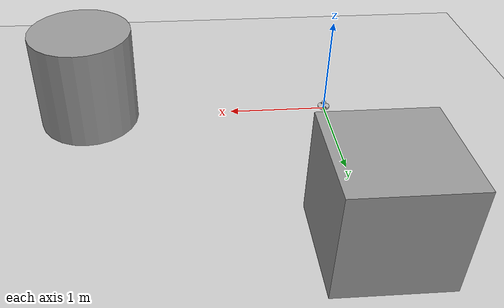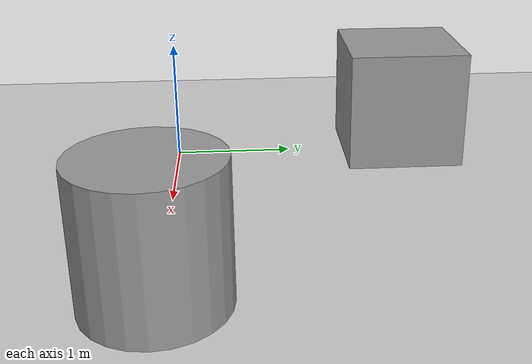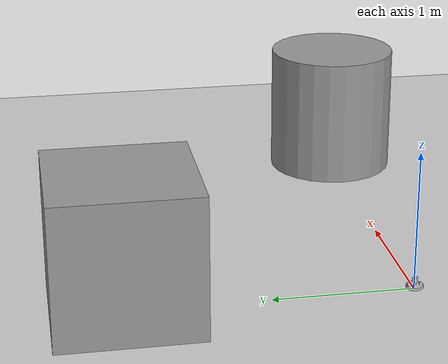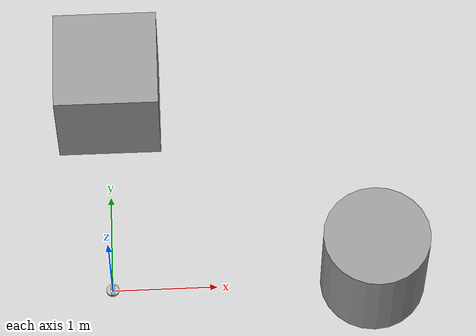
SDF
<gazebo version="1.2">
 <world name="default">
  <physics type="ode">
   <gravity>0.000000 0.000000 -9.800000</gravity>
   <ode>
    <solver><type>quick</type><dt>0.003000</dt><iters>30</iters><sor>1.300000</sor></solver>
    <constraints>
     <cfm>0.000010</cfm>
     <erp>0.800000</erp>
     <contact_max_correcting_vel>100.000000</contact_max_correcting_vel>
     <contact_surface_layer>0.001000</contact_surface_layer>
    </constraints>
   </ode>
   <update_rate>1000.000000</update_rate>
  </physics>
  <model name="ground_plane">
   <static>1</static>
   <link name="link">
    <collision name="collision">
     <geometry>
      <plane><normal>0.000000 0.000000 1.000000</normal><size>100.000000 100.000000</size></plane>
     </geometry>
     <surface><friction><ode><mu>100.000000</mu><mu2>50.000000</mu2></ode></friction></surface>
    </collision>
    <visual name="visual">
     <cast_shadows>0</cast_shadows>
     <geometry>
      <plane><normal>0.000000 0.000000 1.000000</normal><size>100.000000 100.000000</size></plane>
     </geometry>
     <material>
      <script><uri>file://media/materials/scripts/gazebo.material</uri><name>Gazebo/Grey</name></script>
     </material>
    </visual>
    <velocity_decay><linear>0.000000</linear><angular>0.000000</angular></velocity_decay>
   </link>
  </model>
  <light name="sun" type="directional">
   <pose>0.000000 0.000000 10.000000 0.000000 -0.000000 0.000000</pose>
   <diffuse>0.800000 0.800000 0.800000 1.000000</diffuse>
   <specular>0.100000 0.100000 0.100000 1.000000</specular>
   <attenuation>
    <range>1000.000000</range>
    <constant>0.900000</constant>
    <linear>0.100000</linear>
    <quadratic>0.010000</quadratic>
   </attenuation>
   <direction>0.500000 0.000000 -1.000000</direction>
  </light>
  <scene>
   <ambient>0.000000 0.000000 0.000000 1.000000</ambient>
   <background>0.700000 0.700000 0.700000 1.000000</background>
   <shadows>1</shadows>
  </scene>
  <model name="robot_0">
   <pose>0.000000 -0.002347 0.021013 0.000237 -0.000000 0.000000</pose>
   <link name="base_link">
    <inertial>
     <pose>0.000000 0.000000 0.020000 0.000000 -0.000000 0.000000</pose>
     <mass>0.000300</mass>
     <inertia>
      <ixx>0.000300</ixx>
      <ixy>0.000000</ixy>
      <ixz>0.000000</ixz>
      <iyy>0.000300</iyy>
      <iyz>0.000000</iyz>
      <izz>0.000300</izz>
     </inertia>
    </inertial>
    <collision name="base_link_geom">
     <geometry><cylinder><length>0.020000</length><radius>0.061000</radius></cylinder></geometry>
    </collision>
    <collision name="base_link_geom_hokuyo_link">
     <pose>0.000000 0.000000 0.050000 0.000000 -0.000000 0.000000</pose>
     <geometry><cylinder><length>0.030000</length><radius>0.020000</radius></cylinder></geometry>
    </collision>
    <collision name="base_link_geom_imu_link">
     <pose>0.000000 0.000000 0.010000 0.000000 -0.000000 0.000000</pose>
     <geometry><cylinder><length>0.010000</length><radius>0.010000</radius></cylinder></geometry>
    </collision>
    <visual name="base_link_visual">
     <geometry><cylinder><length>0.020000</length><radius>0.061000</radius></cylinder></geometry>
    </visual>
    <visual name="base_link_visual_hokuyo_link">
     <pose>0.000000 0.000000 0.050000 0.000000 -0.000000 0.000000</pose>
     <geometry><cylinder><length>0.030000</length><radius>0.020000</radius></cylinder></geometry>
    </visual>
    <visual name="base_link_visual_imu_link">
     <pose>0.000000 0.000000 0.010000 0.000000 -0.000000 0.000000</pose>
     <geometry><cylinder><length>0.010000</length><radius>0.010000</radius></cylinder></geometry>
    </visual>
    <velocity_decay><linear>0.000000</linear><angular>0.000000</angular></velocity_decay>
    <sensor name="hokuyo_laser" type="ray">
     <update_rate>10.000000</update_rate>
     <ray>
      <scan>
       <horizontal>
        <samples>640</samples>
        <resolution>1.000000</resolution>
        <min_angle>-3.141593</min_angle>
        <max_angle>3.141593</max_angle>
       </horizontal>
       <vertical><samples>1</samples><min_angle>0.000000</min_angle><max_angle>0.000000</max_angle></vertical>
      </scan>
      <range><min>0.050000</min><max>30.100000</max><resolution>0.001000</resolution></range>
     </ray>
     <plugin name="gazebo_ros_hokuyo_laser_controller02" filename="libgazebo_ros_laser.so">
      <hokuyoMinIntensity>101</hokuyoMinIntensity>
      <gaussianNoise>0.005</gaussianNoise>
      <alwaysOn>1</alwaysOn>
      <updateRate>10.0</updateRate>
      <topicName>scan</topicName>
      <frameName>hokuyo_link</frameName>
     </plugin>
     <pose>0.000000 0.000000 0.050000 0.000000 -0.000000 0.000000</pose>
    </sensor>
   </link>
   <link name="left_wheel">
    <pose>0.000000 0.042000 0.000000 1.570800 -0.000000 0.000000</pose>
    <inertial>
     <mass>0.000100</mass>
     <inertia>
      <ixx>0.000100</ixx>
      <ixy>0.000000</ixy>
      <ixz>0.000000</ixz>
      <iyy>0.000100</iyy>
      <iyz>0.000000</iyz>
      <izz>0.000100</izz>
     </inertia>
    </inertial>
    <collision name="left_wheel_geom">
     <geometry><cylinder><length>0.020000</length><radius>0.021000</radius></cylinder></geometry>
    </collision>
    <visual name="left_wheel_visual">
     <geometry><cylinder><length>0.020000</length><radius>0.021000</radius></cylinder></geometry>
    </visual>
    <velocity_decay><linear>0.000000</linear><angular>0.000000</angular></velocity_decay>
   </link>
   <joint name="left_wheel_joint" type="revolute">
    <child>left_wheel</child>
    <parent>base_link</parent>
    <axis>
     <xyz>0.000000 -0.000000 1.000000</xyz>
     <limit><lower>-10000000000000000.000000</lower><upper>10000000000000000.000000</upper></limit>
    </axis>
   </joint>
   <link name="right_wheel">
    <pose>0.000000 -0.042000 0.000000 -1.570800 0.000000 0.000000</pose>
    <inertial>
     <mass>0.000100</mass>
     <inertia>
      <ixx>0.000100</ixx>
      <ixy>0.000000</ixy>
      <ixz>0.000000</ixz>
      <iyy>0.000100</iyy>
      <iyz>0.000000</iyz>
      <izz>0.000100</izz>
     </inertia>
    </inertial>
    <collision name="right_wheel_geom">
     <geometry><cylinder><length>0.020000</length><radius>0.021000</radius></cylinder></geometry>
    </collision>
    <visual name="right_wheel_visual">
     <geometry><cylinder><length>0.020000</length><radius>0.021000</radius></cylinder></geometry>
    </visual>
    <velocity_decay><linear>0.000000</linear><angular>0.000000</angular></velocity_decay>
   </link>
   <joint name="right_wheel_joint" type="revolute">
    <child>right_wheel</child>
    <parent>base_link</parent>
    <axis>
     <xyz>0.000000 -0.000000 -1.000000</xyz>
     <limit><lower>-10000000000000000.000000</lower><upper>10000000000000000.000000</upper></limit>
    </axis>
   </joint>
   <static>0</static>
   <plugin name="gazebo_ros_controller_manager" filename="libgazebo_ros_controller_manager.so">
    <alwaysOn>1</alwaysOn>
    <updateRate>1000.0</updateRate>
   </plugin>
   <plugin name="imu_controller" filename="libgazebo_ros_imu.so">
    <alwaysOn>1</alwaysOn>
    <updateRate>50.0</updateRate>
    <topicName>imu_data</topicName>
    <serviceName>imu_service</serviceName>
    <gaussianNoise>2.89e-08</gaussianNoise>
    <bodyName>base_link</bodyName>
    <xyzOffset>0 0 -0.01</xyzOffset>
    <rpyOffset>0 -0 0</rpyOffset>
   </plugin>
   <plugin name="p3d_base_controller" filename="libgazebo_ros_p3d.so">
    <alwaysOn>1</alwaysOn>
    <updateRate>10.0</updateRate>
    <bodyName>base_link</bodyName>
    <topicName>odom_gazebo</topicName>
    <gaussianNoise>0.01</gaussianNoise>
    <frameName>base_link</frameName>
    <xyzOffset>0 0 0</xyzOffset>
    <rpyOffset>0 0 0</rpyOffset>
   </plugin>
  </model>
  <model name="unit_cylinder_1">
   <pose>2.488070 0.000000 0.500000 -0.000000 0.000000 0.000001</pose>
   <link name="link">
    <inertial><mass>1.000000</mass></inertial>
    <collision name="collision">
     <geometry><cylinder><radius>0.500000</radius><length>1.000000</length></cylinder></geometry>
    </collision>
    <visual name="visual">
     <geometry><cylinder><radius>0.500000</radius><length>1.000000</length></cylinder></geometry>
     <material>
      <script><uri>file://media/materials/scripts/gazebo.material</uri><name>Gazebo/Grey</name></script>
     </material>
    </visual>
    <velocity_decay><linear>0.000000</linear><angular>0.000000</angular></velocity_decay>
   </link>
   <static>0</static>
  </model>
  <model name="unit_box_1">
   <pose>-0.000008 2.000000 0.499992 -0.000000 -0.000016 -0.000000</pose>
   <link name="link">
    <inertial><mass>1.000000</mass></inertial>
    <collision name="collision">
     <geometry><box><size>1.000000 1.000000 1.000000</size></box></geometry>
    </collision>
    <visual name="visual">
     <geometry><box><size>1.000000 1.000000 1.000000</size></box></geometry>
     <material>
      <script><uri>file://media/materials/scripts/gazebo.material</uri><name>Gazebo/Grey</name></script>
     </material>
    </visual>
    <velocity_decay><linear>0.000000</linear><angular>0.000000</angular></velocity_decay>
   </link>
   <static>0</static>
  </model>
 </world>
</gazebo>
